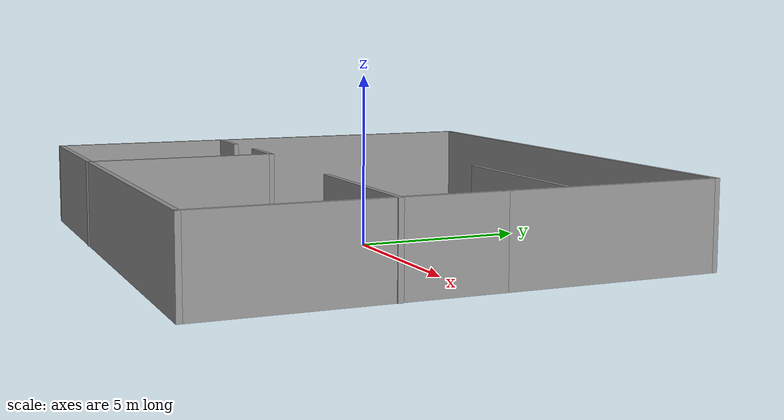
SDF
<?xml version='1.0'?>
<sdf version='1.7'>
  <model name='Hotel'>
    <pose>-0.302779 -0.310091 0 0 -0 0</pose>
    <link name='Wall_11'>
      <collision name='Wall_11_Collision'>
        <geometry>
          <box>
            <size>8.25 0.15 2.5</size>
          </box>
        </geometry>
        <pose>0 0 1.25 0 -0 0</pose>
      </collision>
      <visual name='Wall_11_Visual'>
        <pose>0 0 1.25 0 -0 0</pose>
        <geometry>
          <box>
            <size>8.25 0.15 2.5</size>
          </box>
        </geometry>
        <material>
          <script>
            <uri>file://media/materials/scripts/gazebo.material</uri>
            <name>Gazebo/Grey</name>
          </script>
          <ambient>1 1 1 1</ambient>
        </material>
        <meta>
          <layer>0</layer>
        </meta>
      </visual>
      <pose>7.5279 -3.11048 0 0 -0 -1.5708</pose>
    </link>
    <link name='Wall_12'>
      <collision name='Wall_12_Collision'>
        <geometry>
          <box>
            <size>15.25 0.15 2.5</size>
          </box>
        </geometry>
        <pose>0 0 1.25 0 -0 0</pose>
      </collision>
      <visual name='Wall_12_Visual'>
        <pose>0 0 1.25 0 -0 0</pose>
        <geometry>
          <box>
            <size>15.25 0.15 2.5</size>
          </box>
        </geometry>
        <material>
          <script>
            <uri>file://media/materials/scripts/gazebo.material</uri>
            <name>Gazebo/Grey</name>
          </script>
          <ambient>1 1 1 1</ambient>
        </material>
        <meta>
          <layer>0</layer>
        </meta>
      </visual>
      <pose>-0.022098 -7.16048 0 0 -0 3.14159</pose>
    </link>
    <link name='Wall_13'>
      <collision name='Wall_13_Collision'>
        <geometry>
          <box>
            <size>14.5 0.15 2.5</size>
          </box>
        </geometry>
        <pose>0 0 1.25 0 -0 0</pose>
      </collision>
      <visual name='Wall_13_Visual'>
        <pose>0 0 1.25 0 -0 0</pose>
        <geometry>
          <box>
            <size>14.5 0.15 2.5</size>
          </box>
        </geometry>
        <material>
          <script>
            <uri>file://media/materials/scripts/gazebo.material</uri>
            <name>Gazebo/Grey</name>
          </script>
          <ambient>1 1 1 1</ambient>
        </material>
        <meta>
          <layer>0</layer>
        </meta>
      </visual>
      <pose>-7.5721 0.014519 0 0 -0 1.5708</pose>
    </link>
    <link name='Wall_14'>
      <collision name='Wall_14_Collision'>
        <geometry>
          <box>
            <size>15.25 0.15 2.5</size>
          </box>
        </geometry>
        <pose>0 0 1.25 0 -0 0</pose>
      </collision>
      <visual name='Wall_14_Visual'>
        <pose>0 0 1.25 0 -0 0</pose>
        <geometry>
          <box>
            <size>15.25 0.15 2.5</size>
          </box>
        </geometry>
        <material>
          <script>
            <uri>file://media/materials/scripts/gazebo.material</uri>
            <name>Gazebo/Grey</name>
          </script>
          <ambient>1 1 1 1</ambient>
        </material>
        <meta>
          <layer>0</layer>
        </meta>
      </visual>
      <pose>-0.022098 7.18952 0 0 -0 0</pose>
    </link>
    <link name='Wall_15'>
      <collision name='Wall_15_Collision'>
        <geometry>
          <box>
            <size>0.15 0.15 2.5</size>
          </box>
        </geometry>
        <pose>0 0 1.25 0 -0 0</pose>
      </collision>
      <visual name='Wall_15_Visual'>
        <pose>0 0 1.25 0 -0 0</pose>
        <geometry>
          <box>
            <size>0.15 0.15 2.5</size>
          </box>
        </geometry>
        <material>
          <script>
            <uri>file://media/materials/scripts/gazebo.material</uri>
            <name>Gazebo/Grey</name>
          </script>
          <ambient>1 1 1 1</ambient>
        </material>
        <meta>
          <layer>0</layer>
        </meta>
      </visual>
      <pose>7.5279 7.18952 0 0 -0 0</pose>
    </link>
    <link name='Wall_18'>
      <collision name='Wall_18_Collision'>
        <geometry>
          <box>
            <size>6.4 0.15 2.5</size>
          </box>
        </geometry>
        <pose>0 0 1.25 0 -0 0</pose>
      </collision>
      <visual name='Wall_18_Visual'>
        <pose>0 0 1.25 0 -0 0</pose>
        <geometry>
          <box>
            <size>6.4 0.15 2.5</size>
          </box>
        </geometry>
        <material>
          <script>
            <uri>file://media/materials/scripts/gazebo.material</uri>
            <name>Gazebo/Grey</name>
          </script>
          <ambient>1 1 1 1</ambient>
        </material>
        <meta>
          <layer>0</layer>
        </meta>
      </visual>
      <pose>7.5279 4.06452 0 0 -0 1.5708</pose>
    </link>
    <link name='Wall_21'>
      <collision name='Wall_21_Collision'>
        <geometry>
          <box>
            <size>5.75 0.15 2.5</size>
          </box>
        </geometry>
        <pose>0 0 1.25 0 -0 0</pose>
      </collision>
      <visual name='Wall_21_Visual'>
        <pose>0 0 1.25 0 -0 0</pose>
        <geometry>
          <box>
            <size>5.75 0.15 2.5</size>
          </box>
        </geometry>
        <material>
          <script>
            <uri>file://media/materials/scripts/gazebo.material</uri>
            <name>Gazebo/Grey</name>
          </script>
          <ambient>1 1 1 1</ambient>
        </material>
        <meta>
          <layer>0</layer>
        </meta>
      </visual>
      <pose>-2.56258 -4.38952 0 0 -0 1.5708</pose>
    </link>
    <link name='Wall_22'>
      <collision name='Wall_22_Collision'>
        <geometry>
          <box>
            <size>1.75 0.15 2.5</size>
          </box>
        </geometry>
        <pose>0 0 1.25 0 -0 0</pose>
      </collision>
      <visual name='Wall_22_Visual'>
        <pose>0 0 1.25 0 -0 0</pose>
        <geometry>
          <box>
            <size>1.75 0.15 2.5</size>
          </box>
        </geometry>
        <material>
          <script>
            <uri>file://media/materials/scripts/gazebo.material</uri>
            <name>Gazebo/Grey</name>
          </script>
          <ambient>1 1 1 1</ambient>
        </material>
        <meta>
          <layer>0</layer>
        </meta>
      </visual>
      <pose>-3.36258 -1.58952 0 0 -0 3.14159</pose>
    </link>
    <link name='Wall_24'>
      <collision name='Wall_24_Collision'>
        <geometry>
          <box>
            <size>1.75 0.15 2.5</size>
          </box>
        </geometry>
        <pose>0 0 1.25 0 -0 0</pose>
      </collision>
      <visual name='Wall_24_Visual'>
        <pose>0 0 1.25 0 -0 0</pose>
        <geometry>
          <box>
            <size>1.75 0.15 2.5</size>
          </box>
        </geometry>
        <material>
          <script>
            <uri>file://media/materials/scripts/gazebo.material</uri>
            <name>Gazebo/Grey</name>
          </script>
          <ambient>1 1 1 1</ambient>
        </material>
        <meta>
          <layer>0</layer>
        </meta>
      </visual>
      <pose>-6.75011 -1.68328 0 0 -0 0</pose>
    </link>
    <link name='Wall_26'>
      <collision name='Wall_26_Collision'>
        <geometry>
          <box>
            <size>5 0.15 2.5</size>
          </box>
        </geometry>
        <pose>0 0 1.25 0 -0 0</pose>
      </collision>
      <visual name='Wall_26_Visual'>
        <pose>0 0 1.25 0 -0 0</pose>
        <geometry>
          <box>
            <size>5 0.15 2.5</size>
          </box>
        </geometry>
        <material>
          <script>
            <uri>file://media/materials/scripts/gazebo.material</uri>
            <name>Gazebo/Grey</name>
          </script>
          <ambient>1 1 1 1</ambient>
        </material>
        <meta>
          <layer>0</layer>
        </meta>
      </visual>
      <pose>5.0673 2.74565 0 0 -0 3.14159</pose>
    </link>
    <link name='Wall_28'>
      <collision name='Wall_28_Collision'>
        <geometry>
          <box>
            <size>4.75 0.15 2.5</size>
          </box>
        </geometry>
        <pose>0 0 1.25 0 -0 0</pose>
      </collision>
      <visual name='Wall_28_Visual'>
        <pose>0 0 1.25 0 -0 0</pose>
        <geometry>
          <box>
            <size>4.75 0.15 2.5</size>
          </box>
        </geometry>
        <material>
          <script>
            <uri>file://media/materials/scripts/gazebo.material</uri>
            <name>Gazebo/Grey</name>
          </script>
          <ambient>1 1 1 1</ambient>
        </material>
        <meta>
          <layer>0</layer>
        </meta>
      </visual>
      <pose>5.2721 -1.88278 0 0 -0 3.14159</pose>
    </link>
    <static>1</static>
  </model>
</sdf>
